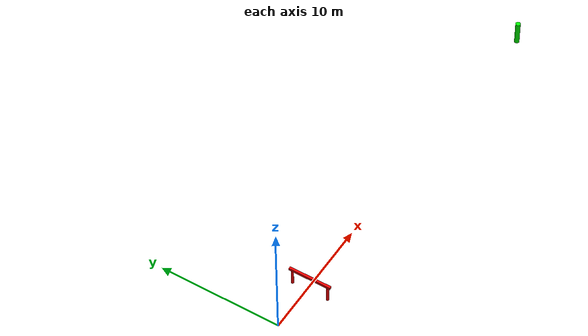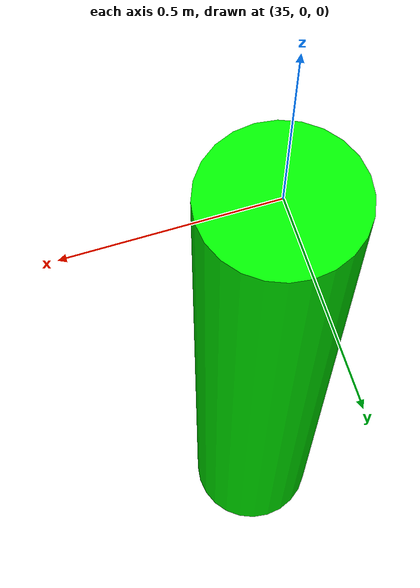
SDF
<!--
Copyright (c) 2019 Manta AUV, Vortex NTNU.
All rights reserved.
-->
<sdf version="1.5">
 <world name="empty_underwater">
  <physics name="default_physics" default="true" type="ode">
   <max_step_size>0.002</max_step_size>
   <real_time_factor>1</real_time_factor>
   <real_time_update_rate>500</real_time_update_rate>
   <ode><solver><type>quick</type><iters>50</iters><sor>0.5</sor></solver></ode>
  </physics>
  <scene>
   <ambient>0.01 0.01 0.01 1.0</ambient>
   <sky><clouds><speed>12</speed></clouds></sky>
   <shadows>1</shadows>
   <fog>
    <color>0.1 0.2 0.3 1.0</color>
    <type>linear</type>
    <density>0.001</density>
    <start>10</start>
    <end>200</end>
   </fog>
  </scene>
  <spherical_coordinates>
   <latitude_deg>56.71897669633431</latitude_deg>
   <longitude_deg>3.515625</longitude_deg>
  </spherical_coordinates>
  <include><uri>model://sun</uri></include>
  <include><name>pole</name><pose>35 0 -2.5 0 0 0</pose><uri>model://2018/Pole</uri></include>
  <include><name>test_gate</name><pose>5 0 -2 0 0 0</pose><uri>model://2018/test_gate</uri></include>
  <light type="directional" name="sun0">
   <pose>8 -21 10 0 0.8 -2.8</pose>
   <diffuse>0.8 0.8 0.8 1</diffuse>
   <specular>0.2 0.2 0.2 1</specular>
   <attenuation>
    <range>1000</range>
    <constant>0.9</constant>
    <linear>0.01</linear>
    <quadratic>0.001</quadratic>
   </attenuation>
   <direction>-0.5 0.1 -0.9</direction>
  </light>
  <light type="directional" name="sun1">
   <pose>8 -20 10 0 0.8 0</pose>
   <diffuse>0.8 0.8 0.8 1</diffuse>
   <specular>0.2 0.2 0.2 1</specular>
   <attenuation>
    <range>1000</range>
    <constant>0.9</constant>
    <linear>0.01</linear>
    <quadratic>0.001</quadratic>
   </attenuation>
   <direction>-0.5 0.1 -0.9</direction>
  </light>
  <light type="directional" name="sun2">
   <pose>8 -19 10 0 0 0</pose>
   <diffuse>0.8 0.8 0.8 1</diffuse>
   <specular>0.2 0.2 0.2 1</specular>
   <attenuation>
    <range>1000</range>
    <constant>0.9</constant>
    <linear>0.01</linear>
    <quadratic>0.001</quadratic>
   </attenuation>
   <direction>-0.5 0.1 -0.9</direction>
  </light>
  <light type="directional" name="sun3">
   <pose>8 -19 10 1.75 0 0</pose>
   <diffuse>0.8 0.8 0.8 1</diffuse>
   <specular>0.2 0.2 0.2 1</specular>
   <attenuation>
    <range>1000</range>
    <constant>0.9</constant>
    <linear>0.01</linear>
    <quadratic>0.001</quadratic>
   </attenuation>
   <direction>-0.5 0.1 -0.9</direction>
  </light>
  <light type="directional" name="sun4">
   <pose>8 -19 10 1.75 0 2.9</pose>
   <diffuse>0.8 0.8 0.8 1</diffuse>
   <specular>0.2 0.2 0.2 1</specular>
   <attenuation>
    <range>1000</range>
    <constant>0.9</constant>
    <linear>0.01</linear>
    <quadratic>0.001</quadratic>
   </attenuation>
   <direction>-0.5 0.1 -0.9</direction>
  </light>
  <plugin name="underwater_current_plugin" filename="libuuv_underwater_current_ros_plugin.so">
   <namespace>hydrodynamics</namespace>
   <constant_current>
    <topic>current_velocity</topic>
    <velocity><mean>0</mean><min>0</min><max>5</max><mu>0.0</mu><noiseAmp>0.0</noiseAmp></velocity>
    <horizontal_angle>
     <mean>0</mean>
     <min>-3.141592653589793238</min>
     <max>3.141592653589793238</max>
     <mu>0.0</mu>
     <noiseAmp>0.0</noiseAmp>
    </horizontal_angle>
    <vertical_angle>
     <mean>0</mean>
     <min>-3.141592653589793238</min>
     <max>3.141592653589793238</max>
     <mu>0.0</mu>
     <noiseAmp>0.0</noiseAmp>
    </vertical_angle>
   </constant_current>
  </plugin>
  <plugin name="sc_interface" filename="libuuv_sc_ros_interface_plugin.so"/>
 </world>
</sdf>

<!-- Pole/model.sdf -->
<sdf version='1.6'>
  <model name='Pole'>
    <link name='link_14'>
      <pose frame=''>-0 0 0 0 -0 0</pose>
      <visual name='visual'>
        <pose frame=''>0 0 1.5 0 -0 0</pose>
        <geometry>
          <cylinder>
            <radius>0.2</radius>
            <length>2</length>
          </cylinder>
        </geometry>
        <material>
          <lighting>1</lighting>
          <script>
            <uri>file://media/materials/scripts/gazebo.material</uri>
            <name>Gazebo/Grey</name>
          </script>
          <ambient>0 1 0 1</ambient>
          <diffuse>0 1 0 1</diffuse>
          <specular>0 1 0 1</specular>
          <emissive>0 1 0 1</emissive>
          <shader type='vertex'>
            <normal_map>__default__</normal_map>
          </shader>
        </material>
        <cast_shadows>1</cast_shadows>
        <transparency>0</transparency>
      </visual>
      <collision name='collision'>
        <laser_retro>0</laser_retro>
        <max_contacts>10</max_contacts>
        <pose frame=''>0 0 1.5 0 -0 0</pose>
        <geometry>
          <cylinder>
            <radius>0.2</radius>
            <length>2</length>
          </cylinder>
        </geometry>
      </collision>
    </link>
    <static>1</static>
  </model>
</sdf>

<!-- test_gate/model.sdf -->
<sdf version='1.6'>
  <model name='test_gate'>
    <link name='link_15'>
      <pose frame=''>0 -1 0 0 -0 0</pose>
      <visual name='visual'>
        <pose frame=''>0 0 1 0 -0 0</pose>
        <geometry>
          <cylinder>
            <radius>0.1</radius>
            <length>1.5</length>
          </cylinder>
        </geometry>
        <material>
          <lighting>1</lighting>
          <script>
            <uri>file://media/materials/scripts/gazebo.material</uri>
            <name>Gazebo/Grey</name>
          </script>
          <ambient>1 0 0 1</ambient>
          <diffuse>1 0 0 1</diffuse>
          <specular>1 0 0 1</specular>
          <emissive>0 0 0 1</emissive>
          <shader type='vertex'>
            <normal_map>__default__</normal_map>
          </shader>
        </material>
        <cast_shadows>1</cast_shadows>
        <transparency>0</transparency>
      </visual>
      <collision name='collision'>
        <laser_retro>0</laser_retro>
        <max_contacts>10</max_contacts>
        <pose frame=''>0 0 0 0 -0 0</pose>
        <geometry>
          <cylinder>
            <radius>0.1</radius>
            <length>1.5</length>
          </cylinder>
        </geometry>
      </collision>
    </link>
    <link name='link_16'>
      <pose frame=''>0 2 0 0 -0 0</pose>
      <visual name='visual'>
        <pose frame=''>0 0 1 0 -0 0</pose>
        <geometry>
          <cylinder>
            <radius>0.1</radius>
            <length>1.5</length>
          </cylinder>
        </geometry>
        <material>
          <lighting>1</lighting>
          <script>
            <uri>file://media/materials/scripts/gazebo.material</uri>
            <name>Gazebo/Grey</name>
          </script>
          <ambient>1 0 0 1</ambient>
          <diffuse>1 0 0 1</diffuse>
          <specular>1 0 0 1</specular>
          <emissive>1 0 0 1</emissive>
          <shader type='vertex'>
            <normal_map>__default__</normal_map>
          </shader>
        </material>
        <cast_shadows>1</cast_shadows>
        <transparency>0</transparency>
      </visual>
      <collision name='collision'>
        <laser_retro>0</laser_retro>
        <max_contacts>10</max_contacts>
        <pose frame=''>0 0 1 0 -0 0</pose>
        <geometry>
          <cylinder>
            <radius>0.1</radius>
            <length>1.5</length>
          </cylinder>
        </geometry>
      </collision>
    </link>
    <link name='link_17'>
      <pose frame=''>0 -1 0 0 -0 0</pose>
      <visual name='visual'>
        <pose frame=''>0 1.5 1.75 0 -0 0</pose>
        <geometry>
          <box>
            <size>0.2 3.5 0.2</size>
          </box>
        </geometry>
        <material>
          <lighting>1</lighting>
          <script>
            <uri>file://media/materials/scripts/gazebo.material</uri>
            <name>Gazebo/Grey</name>
          </script>
          <ambient>1 0 0 1</ambient>
          <diffuse>1 0 0 1</diffuse>
          <specular>1 0 0 1</specular>
          <emissive>1 0 0 1</emissive>
          <shader type='vertex'>
            <normal_map>__default__</normal_map>
          </shader>
        </material>
        <cast_shadows>1</cast_shadows>
        <transparency>0</transparency>
      </visual>
      <collision name='collision'>
        <laser_retro>0</laser_retro>
        <max_contacts>10</max_contacts>
        <pose frame=''>0 1.5 1.75 0 -0 0</pose>
        <geometry>
          <box>
            <size>0.2 3.5 0.2</size>
          </box>
        </geometry>
      </collision>
    </link>
    <joint name='link_16_JOINT_5' type='fixed'>
      <parent>link_17</parent>
      <child>link_16</child>
      <pose frame=''>0 0 0 0 -0 0</pose>
      <physics>
        <ode>
          <limit>
            <cfm>0</cfm>
            <erp>0.2</erp>
          </limit>
          <suspension>
            <cfm>0</cfm>
            <erp>0.2</erp>
          </suspension>
        </ode>
      </physics>
    </joint>
    <joint name='link_17_JOINT_6' type='fixed'>
      <parent>link_17</parent>
      <child>link_15</child>
      <pose frame=''>0 0 0 0 -0 0</pose>
      <physics>
        <ode>
          <limit>
            <cfm>0</cfm>
            <erp>0.2</erp>
          </limit>
          <suspension>
            <cfm>0</cfm>
            <erp>0.2</erp>
          </suspension>
        </ode>
      </physics>
    </joint>
    <static>1</static>
  </model>
</sdf>
